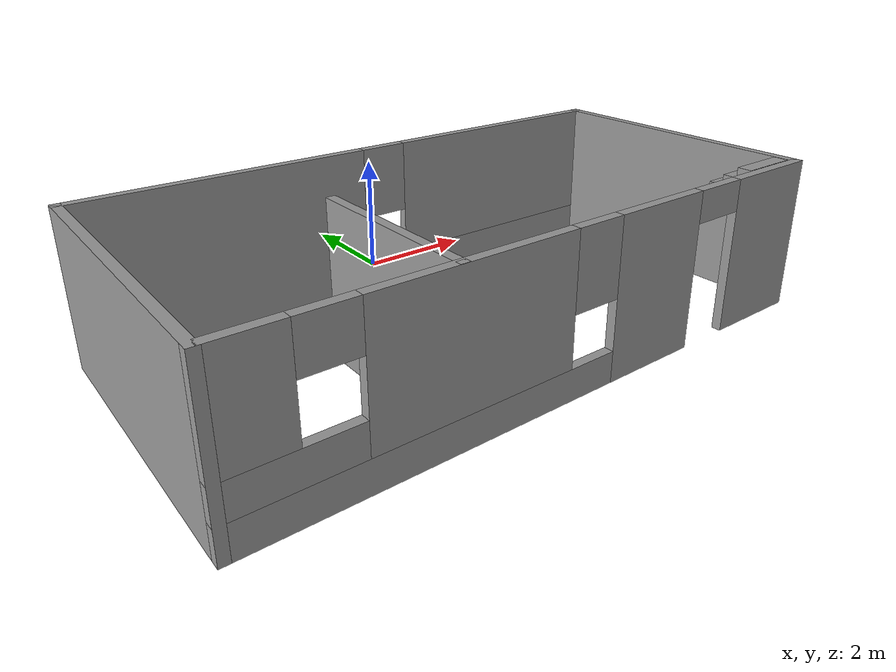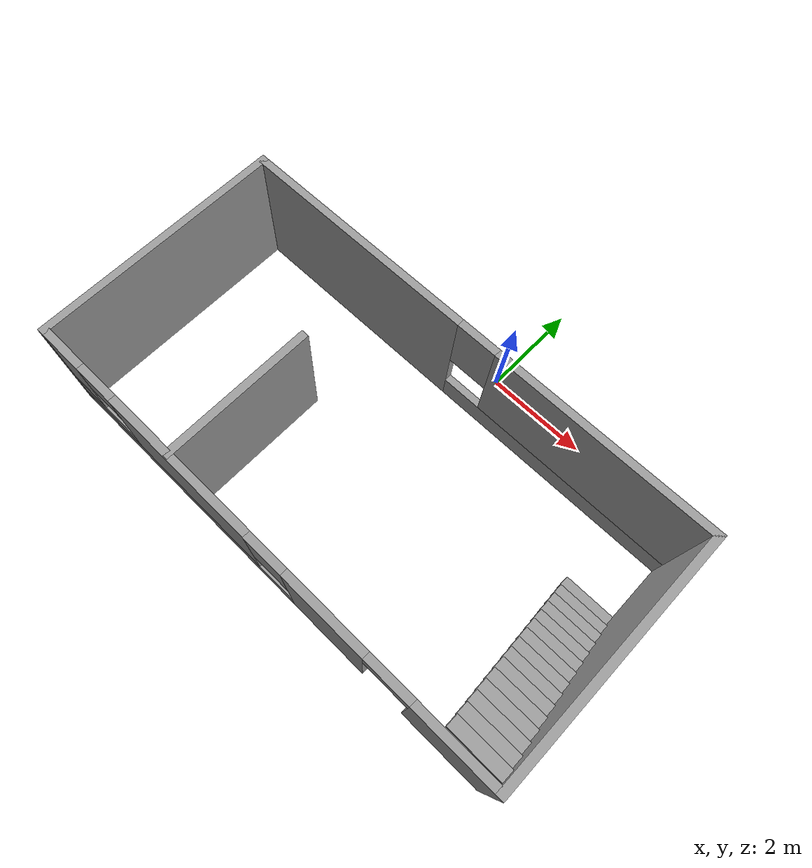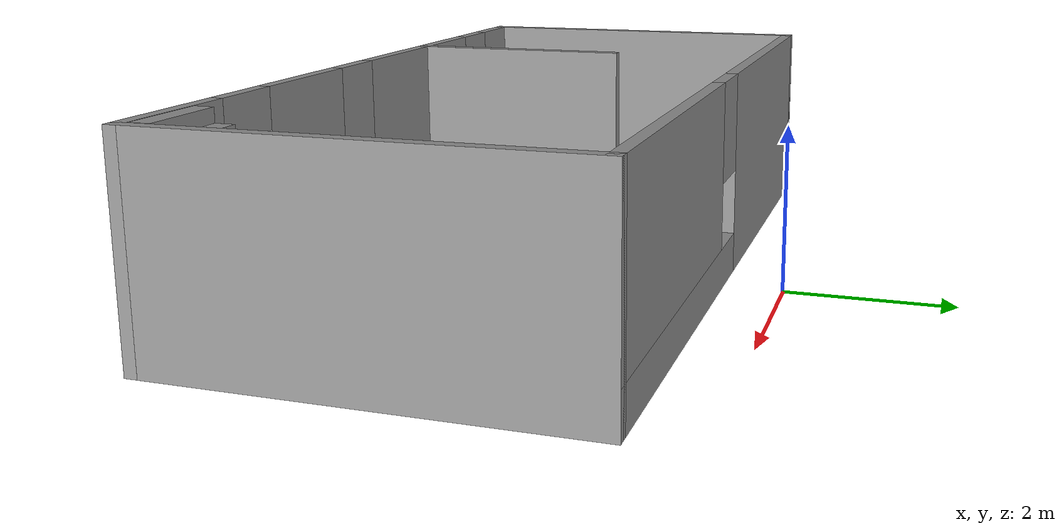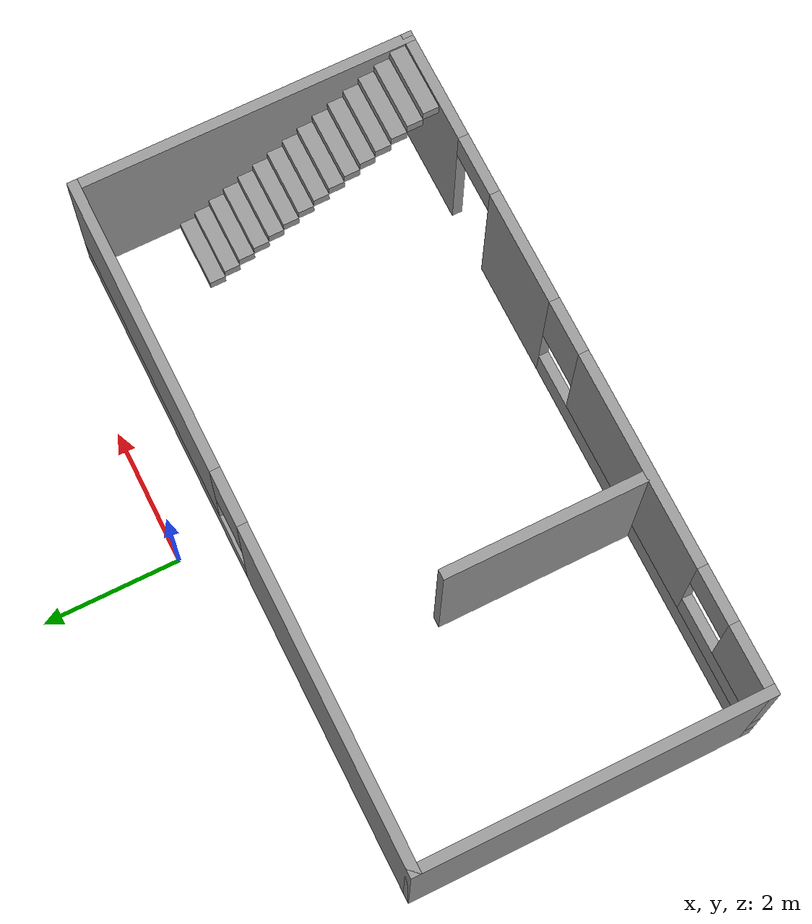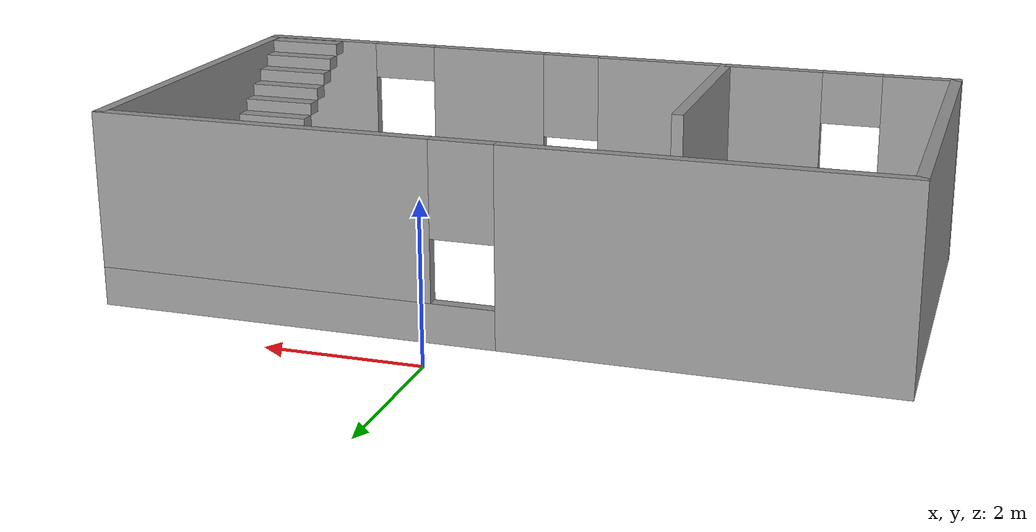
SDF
<?xml version='1.0'?>
<sdf version='1.7'>
  <model name='HouseFrame'>
    <pose>-0.445 -2.8575 0 0 -0 0</pose>
    <link name='Stairs_0'>
      <visual name='Stairs_0_Visual_0'>
        <pose>4.33317 0.692459 0.083333 0 -0 0</pose>
        <geometry>
          <box>
            <size>1 0.233333 0.166667</size>
          </box>
        </geometry>
        <material>
          <script>
            <uri>file://media/materials/scripts/gazebo.material</uri>
            <name>Gazebo/Grey</name>
          </script>
          <ambient>1 1 1 1</ambient>
        </material>
        <meta>
          <layer>0</layer>
        </meta>
      </visual>
      <collision name='Stairs_0_Collision_0'>
        <geometry>
          <box>
            <size>1 0.233333 0.166667</size>
          </box>
        </geometry>
        <pose>4.33317 0.692459 0.083333 0 -0 0</pose>
      </collision>
      <visual name='Stairs_0_Visual_1'>
        <pose>4.33317 0.459125 0.25 0 -0 0</pose>
        <geometry>
          <box>
            <size>1 0.233333 0.166667</size>
          </box>
        </geometry>
        <material>
          <script>
            <uri>file://media/materials/scripts/gazebo.material</uri>
            <name>Gazebo/Grey</name>
          </script>
          <ambient>1 1 1 1</ambient>
        </material>
        <meta>
          <layer>0</layer>
        </meta>
      </visual>
      <collision name='Stairs_0_Collision_1'>
        <geometry>
          <box>
            <size>1 0.233333 0.166667</size>
          </box>
        </geometry>
        <pose>4.33317 0.459125 0.25 0 -0 0</pose>
      </collision>
      <visual name='Stairs_0_Visual_2'>
        <pose>4.33317 0.225792 0.416667 0 -0 0</pose>
        <geometry>
          <box>
            <size>1 0.233333 0.166667</size>
          </box>
        </geometry>
        <material>
          <script>
            <uri>file://media/materials/scripts/gazebo.material</uri>
            <name>Gazebo/Grey</name>
          </script>
          <ambient>1 1 1 1</ambient>
        </material>
        <meta>
          <layer>0</layer>
        </meta>
      </visual>
      <collision name='Stairs_0_Collision_2'>
        <geometry>
          <box>
            <size>1 0.233333 0.166667</size>
          </box>
        </geometry>
        <pose>4.33317 0.225792 0.416667 0 -0 0</pose>
      </collision>
      <visual name='Stairs_0_Visual_3'>
        <pose>4.33317 -0.007541 0.583333 0 -0 0</pose>
        <geometry>
          <box>
            <size>1 0.233333 0.166667</size>
          </box>
        </geometry>
        <material>
          <script>
            <uri>file://media/materials/scripts/gazebo.material</uri>
            <name>Gazebo/Grey</name>
          </script>
          <ambient>1 1 1 1</ambient>
        </material>
        <meta>
          <layer>0</layer>
        </meta>
      </visual>
      <collision name='Stairs_0_Collision_3'>
        <geometry>
          <box>
            <size>1 0.233333 0.166667</size>
          </box>
        </geometry>
        <pose>4.33317 -0.007541 0.583333 0 -0 0</pose>
      </collision>
      <visual name='Stairs_0_Visual_4'>
        <pose>4.33317 -0.240875 0.75 0 -0 0</pose>
        <geometry>
          <box>
            <size>1 0.233333 0.166667</size>
          </box>
        </geometry>
        <material>
          <script>
            <uri>file://media/materials/scripts/gazebo.material</uri>
            <name>Gazebo/Grey</name>
          </script>
          <ambient>1 1 1 1</ambient>
        </material>
        <meta>
          <layer>0</layer>
        </meta>
      </visual>
      <collision name='Stairs_0_Collision_4'>
        <geometry>
          <box>
            <size>1 0.233333 0.166667</size>
          </box>
        </geometry>
        <pose>4.33317 -0.240875 0.75 0 -0 0</pose>
      </collision>
      <visual name='Stairs_0_Visual_5'>
        <pose>4.33317 -0.474208 0.916667 0 -0 0</pose>
        <geometry>
          <box>
            <size>1 0.233333 0.166667</size>
          </box>
        </geometry>
        <material>
          <script>
            <uri>file://media/materials/scripts/gazebo.material</uri>
            <name>Gazebo/Grey</name>
          </script>
          <ambient>1 1 1 1</ambient>
        </material>
        <meta>
          <layer>0</layer>
        </meta>
      </visual>
      <collision name='Stairs_0_Collision_5'>
        <geometry>
          <box>
            <size>1 0.233333 0.166667</size>
          </box>
        </geometry>
        <pose>4.33317 -0.474208 0.916667 0 -0 0</pose>
      </collision>
      <visual name='Stairs_0_Visual_6'>
        <pose>4.33317 -0.707541 1.08333 0 -0 0</pose>
        <geometry>
          <box>
            <size>1 0.233333 0.166667</size>
          </box>
        </geometry>
        <material>
          <script>
            <uri>file://media/materials/scripts/gazebo.material</uri>
            <name>Gazebo/Grey</name>
          </script>
          <ambient>1 1 1 1</ambient>
        </material>
        <meta>
          <layer>0</layer>
        </meta>
      </visual>
      <collision name='Stairs_0_Collision_6'>
        <geometry>
          <box>
            <size>1 0.233333 0.166667</size>
          </box>
        </geometry>
        <pose>4.33317 -0.707541 1.08333 0 -0 0</pose>
      </collision>
      <visual name='Stairs_0_Visual_7'>
        <pose>4.33317 -0.940875 1.25 0 -0 0</pose>
        <geometry>
          <box>
            <size>1 0.233333 0.166667</size>
          </box>
        </geometry>
        <material>
          <script>
            <uri>file://media/materials/scripts/gazebo.material</uri>
            <name>Gazebo/Grey</name>
          </script>
          <ambient>1 1 1 1</ambient>
        </material>
        <meta>
          <layer>0</layer>
        </meta>
      </visual>
      <collision name='Stairs_0_Collision_7'>
        <geometry>
          <box>
            <size>1 0.233333 0.166667</size>
          </box>
        </geometry>
        <pose>4.33317 -0.940875 1.25 0 -0 0</pose>
      </collision>
      <visual name='Stairs_0_Visual_8'>
        <pose>4.33317 -1.17421 1.41667 0 -0 0</pose>
        <geometry>
          <box>
            <size>1 0.233333 0.166667</size>
          </box>
        </geometry>
        <material>
          <script>
            <uri>file://media/materials/scripts/gazebo.material</uri>
            <name>Gazebo/Grey</name>
          </script>
          <ambient>1 1 1 1</ambient>
        </material>
        <meta>
          <layer>0</layer>
        </meta>
      </visual>
      <collision name='Stairs_0_Collision_8'>
        <geometry>
          <box>
            <size>1 0.233333 0.166667</size>
          </box>
        </geometry>
        <pose>4.33317 -1.17421 1.41667 0 -0 0</pose>
      </collision>
      <visual name='Stairs_0_Visual_9'>
        <pose>4.33317 -1.40754 1.58333 0 -0 0</pose>
        <geometry>
          <box>
            <size>1 0.233333 0.166667</size>
          </box>
        </geometry>
        <material>
          <script>
            <uri>file://media/materials/scripts/gazebo.material</uri>
            <name>Gazebo/Grey</name>
          </script>
          <ambient>1 1 1 1</ambient>
        </material>
        <meta>
          <layer>0</layer>
        </meta>
      </visual>
      <collision name='Stairs_0_Collision_9'>
        <geometry>
          <box>
            <size>1 0.233333 0.166667</size>
          </box>
        </geometry>
        <pose>4.33317 -1.40754 1.58333 0 -0 0</pose>
      </collision>
      <visual name='Stairs_0_Visual_10'>
        <pose>4.33317 -1.64088 1.75 0 -0 0</pose>
        <geometry>
          <box>
            <size>1 0.233333 0.166667</size>
          </box>
        </geometry>
        <material>
          <script>
            <uri>file://media/materials/scripts/gazebo.material</uri>
            <name>Gazebo/Grey</name>
          </script>
          <ambient>1 1 1 1</ambient>
        </material>
        <meta>
          <layer>0</layer>
        </meta>
      </visual>
      <collision name='Stairs_0_Collision_10'>
        <geometry>
          <box>
            <size>1 0.233333 0.166667</size>
          </box>
        </geometry>
        <pose>4.33317 -1.64088 1.75 0 -0 0</pose>
      </collision>
      <visual name='Stairs_0_Visual_11'>
        <pose>4.33317 -1.87421 1.91667 0 -0 0</pose>
        <geometry>
          <box>
            <size>1 0.233333 0.166667</size>
          </box>
        </geometry>
        <material>
          <script>
            <uri>file://media/materials/scripts/gazebo.material</uri>
            <name>Gazebo/Grey</name>
          </script>
          <ambient>1 1 1 1</ambient>
        </material>
        <meta>
          <layer>0</layer>
        </meta>
      </visual>
      <collision name='Stairs_0_Collision_11'>
        <geometry>
          <box>
            <size>1 0.233333 0.166667</size>
          </box>
        </geometry>
        <pose>4.33317 -1.87421 1.91667 0 -0 0</pose>
      </collision>
      <visual name='Stairs_0_Visual_12'>
        <pose>4.33317 -2.10754 2.08333 0 -0 0</pose>
        <geometry>
          <box>
            <size>1 0.233333 0.166667</size>
          </box>
        </geometry>
        <material>
          <script>
            <uri>file://media/materials/scripts/gazebo.material</uri>
            <name>Gazebo/Grey</name>
          </script>
          <ambient>1 1 1 1</ambient>
        </material>
        <meta>
          <layer>0</layer>
        </meta>
      </visual>
      <collision name='Stairs_0_Collision_12'>
        <geometry>
          <box>
            <size>1 0.233333 0.166667</size>
          </box>
        </geometry>
        <pose>4.33317 -2.10754 2.08333 0 -0 0</pose>
      </collision>
      <visual name='Stairs_0_Visual_13'>
        <pose>4.33317 -2.34088 2.25 0 -0 0</pose>
        <geometry>
          <box>
            <size>1 0.233333 0.166667</size>
          </box>
        </geometry>
        <material>
          <script>
            <uri>file://media/materials/scripts/gazebo.material</uri>
            <name>Gazebo/Grey</name>
          </script>
          <ambient>1 1 1 1</ambient>
        </material>
        <meta>
          <layer>0</layer>
        </meta>
      </visual>
      <collision name='Stairs_0_Collision_13'>
        <geometry>
          <box>
            <size>1 0.233333 0.166667</size>
          </box>
        </geometry>
        <pose>4.33317 -2.34088 2.25 0 -0 0</pose>
      </collision>
      <visual name='Stairs_0_Visual_14'>
        <pose>4.33317 -2.57421 2.41667 0 -0 0</pose>
        <geometry>
          <box>
            <size>1 0.233333 0.166667</size>
          </box>
        </geometry>
        <material>
          <script>
            <uri>file://media/materials/scripts/gazebo.material</uri>
            <name>Gazebo/Grey</name>
          </script>
          <ambient>1 1 1 1</ambient>
        </material>
        <meta>
          <layer>0</layer>
        </meta>
      </visual>
      <collision name='Stairs_0_Collision_14'>
        <geometry>
          <box>
            <size>1 0.233333 0.166667</size>
          </box>
        </geometry>
        <pose>4.33317 -2.57421 2.41667 0 -0 0</pose>
      </collision>
    </link>
    <link name='Wall_0'>
      <collision name='Wall_0_Collision'>
        <geometry>
          <box>
            <size>5 0.15 2.5</size>
          </box>
        </geometry>
        <pose>0 0 1.25 0 -0 0</pose>
      </collision>
      <visual name='Wall_0_Visual'>
        <pose>0 0 1.25 0 -0 0</pose>
        <geometry>
          <box>
            <size>5 0.15 2.5</size>
          </box>
        </geometry>
        <material>
          <script>
            <uri>file://media/materials/scripts/gazebo.material</uri>
            <name>Gazebo/Grey</name>
          </script>
          <ambient>1 1 1 1</ambient>
        </material>
        <meta>
          <layer>0</layer>
        </meta>
      </visual>
      <pose>-4.925 -0.3575 0 0 -0 1.5708</pose>
    </link>
    <link name='Wall_1'>
      <pose>-0 2.0675 0 0 -0 0</pose>
      <visual name='Wall_1_Visual_0'>
        <pose>-2.58841 0 1.25 0 -0 0</pose>
        <geometry>
          <box>
            <size>4.82317 0.15 2.5</size>
          </box>
        </geometry>
        <material>
          <script>
            <uri>file://media/materials/scripts/gazebo.material</uri>
            <name>Gazebo/Grey</name>
          </script>
          <ambient>1 1 1 1</ambient>
        </material>
        <meta>
          <layer>0</layer>
        </meta>
      </visual>
      <collision name='Wall_1_Collision_0'>
        <geometry>
          <box>
            <size>4.82317 0.15 2.5</size>
          </box>
        </geometry>
        <pose>-2.58841 0 1.25 0 -0 0</pose>
      </collision>
      <visual name='Wall_1_Visual_1'>
        <pose>2.41159 0 0.25 0 -0 0</pose>
        <geometry>
          <box>
            <size>5.17683 0.15 0.5</size>
          </box>
        </geometry>
        <material>
          <script>
            <uri>file://media/materials/scripts/gazebo.material</uri>
            <name>Gazebo/Grey</name>
          </script>
          <ambient>1 1 1 1</ambient>
        </material>
        <meta>
          <layer>0</layer>
        </meta>
      </visual>
      <collision name='Wall_1_Collision_1'>
        <geometry>
          <box>
            <size>5.17683 0.15 0.5</size>
          </box>
        </geometry>
        <pose>2.41159 0 0.25 0 -0 0</pose>
      </collision>
      <visual name='Wall_1_Visual_2'>
        <pose>2.81159 0 1.5 0 -0 0</pose>
        <geometry>
          <box>
            <size>4.37683 0.15 2</size>
          </box>
        </geometry>
        <material>
          <script>
            <uri>file://media/materials/scripts/gazebo.material</uri>
            <name>Gazebo/Grey</name>
          </script>
          <ambient>1 1 1 1</ambient>
        </material>
        <meta>
          <layer>0</layer>
        </meta>
      </visual>
      <collision name='Wall_1_Collision_2'>
        <geometry>
          <box>
            <size>4.37683 0.15 2</size>
          </box>
        </geometry>
        <pose>2.81159 0 1.5 0 -0 0</pose>
      </collision>
      <visual name='Wall_1_Visual_3'>
        <pose>0.223175 0 1.9 0 -0 0</pose>
        <geometry>
          <box>
            <size>0.8 0.15 1.2</size>
          </box>
        </geometry>
        <material>
          <script>
            <uri>file://media/materials/scripts/gazebo.material</uri>
            <name>Gazebo/Grey</name>
          </script>
          <ambient>1 1 1 1</ambient>
        </material>
        <meta>
          <layer>0</layer>
        </meta>
      </visual>
      <collision name='Wall_1_Collision_3'>
        <geometry>
          <box>
            <size>0.8 0.15 1.2</size>
          </box>
        </geometry>
        <pose>0.223175 0 1.9 0 -0 0</pose>
      </collision>
    </link>
    <link name='Wall_2'>
      <collision name='Wall_2_Collision'>
        <geometry>
          <box>
            <size>5 0.15 2.5</size>
          </box>
        </geometry>
        <pose>0 0 1.25 0 -0 0</pose>
      </collision>
      <visual name='Wall_2_Visual'>
        <pose>0 0 1.25 0 -0 0</pose>
        <geometry>
          <box>
            <size>5 0.15 2.5</size>
          </box>
        </geometry>
        <material>
          <script>
            <uri>file://media/materials/scripts/gazebo.material</uri>
            <name>Gazebo/Grey</name>
          </script>
          <ambient>1 1 1 1</ambient>
        </material>
        <meta>
          <layer>0</layer>
        </meta>
      </visual>
      <pose>4.925 -0.3575 0 0 -0 -1.5708</pose>
    </link>
    <link name='Wall_3'>
      <pose>-0 -2.7825 0 0 -0 3.14159</pose>
      <visual name='Wall_3_Visual_0'>
        <pose>-4.1575 0 1.25 0 -0 0</pose>
        <geometry>
          <box>
            <size>1.685 0.15 2.5</size>
          </box>
        </geometry>
        <material>
          <script>
            <uri>file://media/materials/scripts/gazebo.material</uri>
            <name>Gazebo/Grey</name>
          </script>
          <ambient>1 1 1 1</ambient>
        </material>
        <meta>
          <layer>0</layer>
        </meta>
      </visual>
      <collision name='Wall_3_Collision_0'>
        <geometry>
          <box>
            <size>1.685 0.15 2.5</size>
          </box>
        </geometry>
        <pose>-4.1575 0 1.25 0 -0 0</pose>
      </collision>
      <visual name='Wall_3_Visual_1'>
        <pose>-1.58409 0 1.25 0 -0 0</pose>
        <geometry>
          <box>
            <size>1.66183 0.15 2.5</size>
          </box>
        </geometry>
        <material>
          <script>
            <uri>file://media/materials/scripts/gazebo.material</uri>
            <name>Gazebo/Grey</name>
          </script>
          <ambient>1 1 1 1</ambient>
        </material>
        <meta>
          <layer>0</layer>
        </meta>
      </visual>
      <collision name='Wall_3_Collision_1'>
        <geometry>
          <box>
            <size>1.66183 0.15 2.5</size>
          </box>
        </geometry>
        <pose>-1.58409 0 1.25 0 -0 0</pose>
      </collision>
      <visual name='Wall_3_Visual_2'>
        <pose>2.12341 0 0.25 0 -0 0</pose>
        <geometry>
          <box>
            <size>5.75317 0.15 0.5</size>
          </box>
        </geometry>
        <material>
          <script>
            <uri>file://media/materials/scripts/gazebo.material</uri>
            <name>Gazebo/Grey</name>
          </script>
          <ambient>1 1 1 1</ambient>
        </material>
        <meta>
          <layer>0</layer>
        </meta>
      </visual>
      <collision name='Wall_3_Collision_2'>
        <geometry>
          <box>
            <size>5.75317 0.15 0.5</size>
          </box>
        </geometry>
        <pose>2.12341 0 0.25 0 -0 0</pose>
      </collision>
      <visual name='Wall_3_Visual_3'>
        <pose>1.61183 0 1.5 0 -0 0</pose>
        <geometry>
          <box>
            <size>3.13 0.15 2</size>
          </box>
        </geometry>
        <material>
          <script>
            <uri>file://media/materials/scripts/gazebo.material</uri>
            <name>Gazebo/Grey</name>
          </script>
          <ambient>1 1 1 1</ambient>
        </material>
        <meta>
          <layer>0</layer>
        </meta>
      </visual>
      <collision name='Wall_3_Collision_3'>
        <geometry>
          <box>
            <size>3.13 0.15 2</size>
          </box>
        </geometry>
        <pose>1.61183 0 1.5 0 -0 0</pose>
      </collision>
      <visual name='Wall_3_Visual_4'>
        <pose>4.08841 0 0.75 0 -0 0</pose>
        <geometry>
          <box>
            <size>1.82317 0.15 0.5</size>
          </box>
        </geometry>
        <material>
          <script>
            <uri>file://media/materials/scripts/gazebo.material</uri>
            <name>Gazebo/Grey</name>
          </script>
          <ambient>1 1 1 1</ambient>
        </material>
        <meta>
          <layer>0</layer>
        </meta>
      </visual>
      <collision name='Wall_3_Collision_4'>
        <geometry>
          <box>
            <size>1.82317 0.15 0.5</size>
          </box>
        </geometry>
        <pose>4.08841 0 0.75 0 -0 0</pose>
      </collision>
      <visual name='Wall_3_Visual_5'>
        <pose>4.48841 0 1.75 0 -0 0</pose>
        <geometry>
          <box>
            <size>1.02317 0.15 1.5</size>
          </box>
        </geometry>
        <material>
          <script>
            <uri>file://media/materials/scripts/gazebo.material</uri>
            <name>Gazebo/Grey</name>
          </script>
          <ambient>1 1 1 1</ambient>
        </material>
        <meta>
          <layer>0</layer>
        </meta>
      </visual>
      <collision name='Wall_3_Collision_5'>
        <geometry>
          <box>
            <size>1.02317 0.15 1.5</size>
          </box>
        </geometry>
        <pose>4.48841 0 1.75 0 -0 0</pose>
      </collision>
      <visual name='Wall_3_Visual_6'>
        <pose>-0.353175 0 1.9 0 -0 0</pose>
        <geometry>
          <box>
            <size>0.8 0.15 1.2</size>
          </box>
        </geometry>
        <material>
          <script>
            <uri>file://media/materials/scripts/gazebo.material</uri>
            <name>Gazebo/Grey</name>
          </script>
          <ambient>1 1 1 1</ambient>
        </material>
        <meta>
          <layer>0</layer>
        </meta>
      </visual>
      <collision name='Wall_3_Collision_6'>
        <geometry>
          <box>
            <size>0.8 0.15 1.2</size>
          </box>
        </geometry>
        <pose>-0.353175 0 1.9 0 -0 0</pose>
      </collision>
      <visual name='Wall_3_Visual_7'>
        <pose>3.57682 0 2.15 0 -0 0</pose>
        <geometry>
          <box>
            <size>0.8 0.15 0.7</size>
          </box>
        </geometry>
        <material>
          <script>
            <uri>file://media/materials/scripts/gazebo.material</uri>
            <name>Gazebo/Grey</name>
          </script>
          <ambient>1 1 1 1</ambient>
        </material>
        <meta>
          <layer>0</layer>
        </meta>
      </visual>
      <collision name='Wall_3_Collision_7'>
        <geometry>
          <box>
            <size>0.8 0.15 0.7</size>
          </box>
        </geometry>
        <pose>3.57682 0 2.15 0 -0 0</pose>
      </collision>
      <visual name='Wall_3_Visual_8'>
        <pose>-2.865 0 2.25 0 -0 0</pose>
        <geometry>
          <box>
            <size>0.9 0.15 0.5</size>
          </box>
        </geometry>
        <material>
          <script>
            <uri>file://media/materials/scripts/gazebo.material</uri>
            <name>Gazebo/Grey</name>
          </script>
          <ambient>1 1 1 1</ambient>
        </material>
        <meta>
          <layer>0</layer>
        </meta>
      </visual>
      <collision name='Wall_3_Collision_8'>
        <geometry>
          <box>
            <size>0.9 0.15 0.5</size>
          </box>
        </geometry>
        <pose>-2.865 0 2.25 0 -0 0</pose>
      </collision>
    </link>
    <link name='Wall_5'>
      <collision name='Wall_5_Collision'>
        <geometry>
          <box>
            <size>3 0.15 2.5</size>
          </box>
        </geometry>
        <pose>0 0 1.25 0 -0 0</pose>
      </collision>
      <visual name='Wall_5_Visual'>
        <pose>0 0 1.25 0 -0 0</pose>
        <geometry>
          <box>
            <size>3 0.15 2.5</size>
          </box>
        </geometry>
        <material>
          <script>
            <uri>file://media/materials/scripts/gazebo.material</uri>
            <name>Gazebo/Grey</name>
          </script>
          <ambient>1 1 1 1</ambient>
        </material>
        <meta>
          <layer>0</layer>
        </meta>
      </visual>
      <pose>-1.845 -1.3475 0 0 -0 1.5708</pose>
    </link>
    <static>1</static>
  </model>
</sdf>
